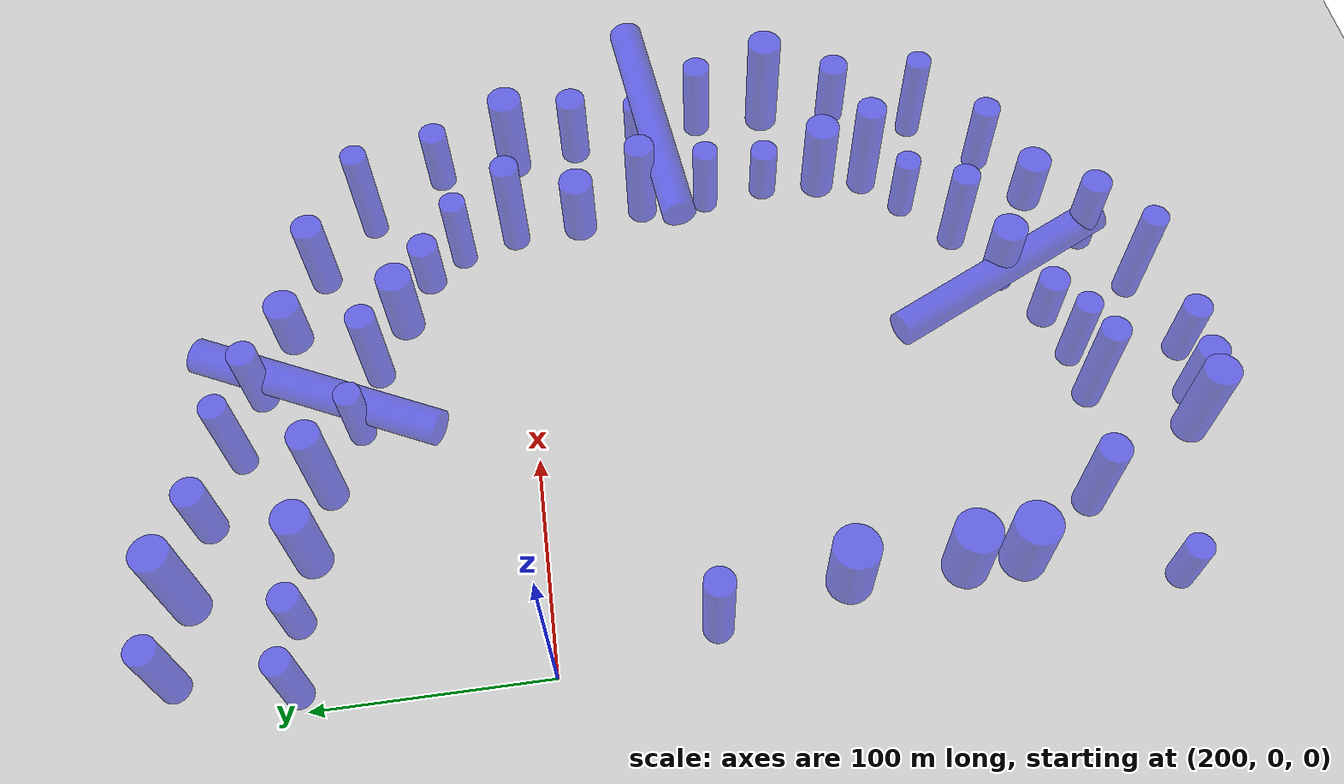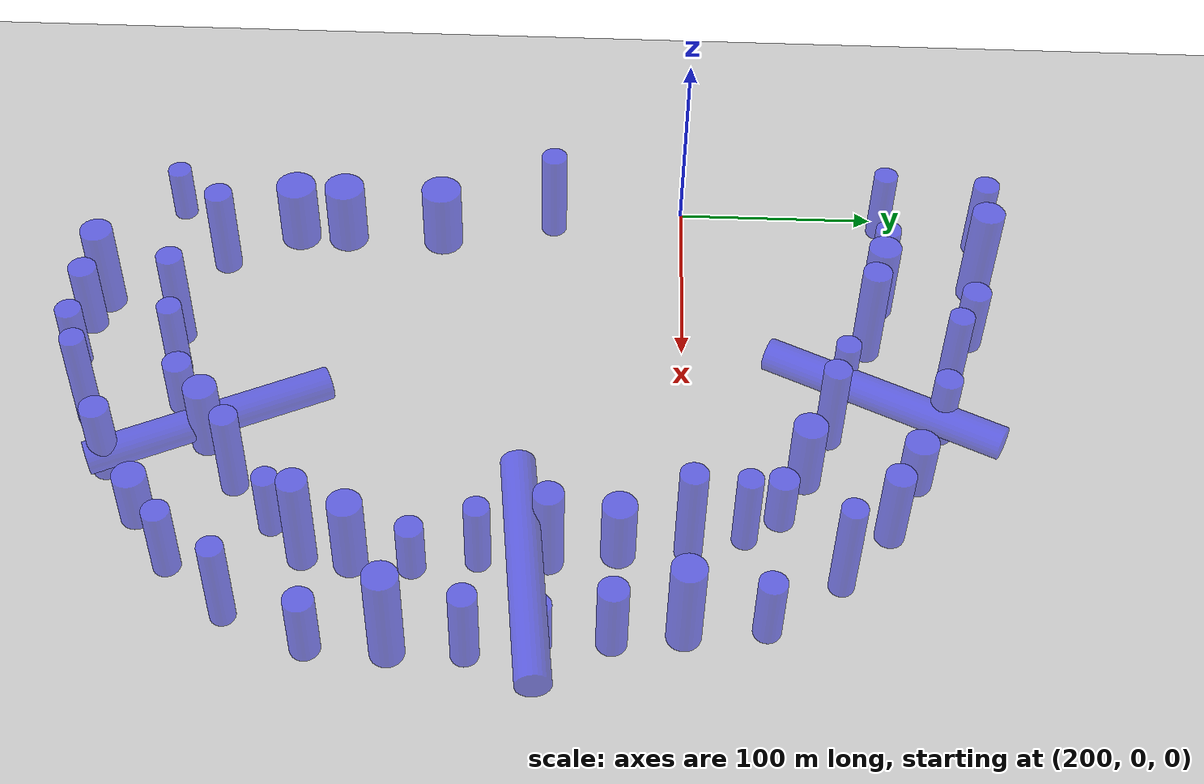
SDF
<sdf version="1.6">
 <world name="default">
  <model name="ground_plane">
   <static>1</static>
   <link name="link">
    <collision name="collision">
     <geometry><plane><normal>0 0 1</normal><size>1400.0 1400.0</size></plane></geometry>
     <surface><friction><ode><mu>100</mu><mu2>50</mu2></ode></friction></surface>
    </collision>
    <visual name="visual">
     <cast_shadows>0</cast_shadows>
     <geometry><plane><normal>0 0 1</normal><size>1400.0 1400.0</size></plane></geometry>
     <material>
      <script><uri>file://media/materials/scripts/gazebo.material</uri><name>Gazebo/Grey</name></script>
     </material>
    </visual>
   </link>
  </model>
  <model name="unit_cylinder_clone_3_clone">
   <static>true</static>
   <pose>225.023 -125.025 18.13715 0 0 0</pose>
   <link name="link">
    <inertial>
     <mass>1</mass>
     <inertia><ixx>0.145833</ixx><ixy>0</ixy><ixz>0</ixz><iyy>0.145833</iyy><iyz>0</iyz><izz>0.125</izz></inertia>
    </inertial>
    <collision name="collision">
     <geometry><cylinder><radius>10.1458</radius><length>36.2743</length></cylinder></geometry>
    </collision>
    <visual name="visual">
     <geometry><cylinder><radius>10.1458</radius><length>36.2743</length></cylinder></geometry>
     <material><ambient>0 0 1 1</ambient><diffuse>0 0 1 1</diffuse></material>
     <transparency>0.5</transparency>
    </visual>
   </link>
  </model>
  <model name="unit_cylinder_clone_3_clone_0_clone_0">
   <static>true</static>
   <pose>225.023 -200.025 18.13715 0 0 0</pose>
   <link name="link">
    <inertial>
     <mass>1</mass>
     <inertia><ixx>0.145833</ixx><ixy>0</ixy><ixz>0</ixz><iyy>0.145833</iyy><iyz>0</iyz><izz>0.125</izz></inertia>
    </inertial>
    <collision name="collision">
     <geometry><cylinder><radius>10.1458</radius><length>36.2743</length></cylinder></geometry>
    </collision>
    <visual name="visual">
     <geometry><cylinder><radius>10.1458</radius><length>36.2743</length></cylinder></geometry>
     <material><ambient>0 0 1 1</ambient><diffuse>0 0 1 1</diffuse></material>
     <transparency>0.5</transparency>
    </visual>
   </link>
  </model>
  <model name="unit_cylinder_clone_3_clone_0_clone_0_clone">
   <static>true</static>
   <pose>225.023 -175.025 18.13715 0 0 0</pose>
   <link name="link">
    <inertial>
     <mass>1</mass>
     <inertia><ixx>0.145833</ixx><ixy>0</ixy><ixz>0</ixz><iyy>0.145833</iyy><iyz>0</iyz><izz>0.125</izz></inertia>
    </inertial>
    <collision name="collision">
     <geometry><cylinder><radius>10.1458</radius><length>36.2743</length></cylinder></geometry>
    </collision>
    <visual name="visual">
     <geometry><cylinder><radius>10.1458</radius><length>36.2743</length></cylinder></geometry>
     <material><ambient>0 0 1 1</ambient><diffuse>0 0 1 1</diffuse></material>
     <transparency>0.5</transparency>
    </visual>
   </link>
  </model>
  <model name="static_obs21">
   <static>true</static>
   <pose>212.28 -67.25 25.0 0 0 0</pose>
   <link name="link">
    <gravity>false</gravity>
    <collision name="collision">
     <geometry><cylinder><radius>6.5</radius><length>50.0</length></cylinder></geometry>
    </collision>
    <visual name="visual">
     <geometry><cylinder><radius>6.5</radius><length>50.0</length></cylinder></geometry>
     <material><ambient>0 0 1 1</ambient><diffuse>0 0 1 1</diffuse></material>
     <transparency>0.5</transparency>
    </visual>
   </link>
  </model>
  <model name="static_obs26">
   <static>true</static>
   <pose>208.76 -263.97 15.0 0 0 0</pose>
   <link name="link">
    <gravity>false</gravity>
    <collision name="collision">
     <geometry><cylinder><radius>6.0</radius><length>30.0</length></cylinder></geometry>
    </collision>
    <visual name="visual">
     <geometry><cylinder><radius>6.0</radius><length>30.0</length></cylinder></geometry>
     <material><ambient>0 0 1 1</ambient><diffuse>0 0 1 1</diffuse></material>
     <transparency>0.5</transparency>
    </visual>
   </link>
  </model>
  <model name="static_obs27">
   <static>true</static>
   <pose>247.28 -235.31 25.0 0 0 0</pose>
   <link name="link">
    <gravity>false</gravity>
    <collision name="collision">
     <geometry><cylinder><radius>7.0</radius><length>50.0</length></cylinder></geometry>
    </collision>
    <visual name="visual">
     <geometry><cylinder><radius>7.0</radius><length>50.0</length></cylinder></geometry>
     <material><ambient>0 0 1 1</ambient><diffuse>0 0 1 1</diffuse></material>
     <transparency>0.5</transparency>
    </visual>
   </link>
  </model>
  <model name="static_obs28">
   <static>true</static>
   <pose>293.27 -296.57 20.0 0 0 0</pose>
   <link name="link">
    <gravity>false</gravity>
    <collision name="collision">
     <geometry><cylinder><radius>7.0</radius><length>40.0</length></cylinder></geometry>
    </collision>
    <visual name="visual">
     <geometry><cylinder><radius>7.0</radius><length>40.0</length></cylinder></geometry>
     <material><ambient>0 0 1 1</ambient><diffuse>0 0 1 1</diffuse></material>
     <transparency>0.5</transparency>
    </visual>
   </link>
  </model>
  <model name="static_obs29">
   <static>true</static>
   <pose>276.98 -291.29 25.0 0 0 0</pose>
   <link name="link">
    <gravity>false</gravity>
    <collision name="collision">
     <geometry><cylinder><radius>8.0</radius><length>50.0</length></cylinder></geometry>
    </collision>
    <visual name="visual">
     <geometry><cylinder><radius>8.0</radius><length>50.0</length></cylinder></geometry>
     <material><ambient>0 0 1 1</ambient><diffuse>0 0 1 1</diffuse></material>
     <transparency>0.5</transparency>
    </visual>
   </link>
  </model>
  <model name="static_obs30">
   <static>true</static>
   <pose>299.46 -250.24 28.0 0 0 0</pose>
   <link name="link">
    <gravity>false</gravity>
    <collision name="collision">
     <geometry><cylinder><radius>6.5</radius><length>56.0</length></cylinder></geometry>
    </collision>
    <visual name="visual">
     <geometry><cylinder><radius>6.5</radius><length>56.0</length></cylinder></geometry>
     <material><ambient>0 0 1 1</ambient><diffuse>0 0 1 1</diffuse></material>
     <transparency>0.5</transparency>
    </visual>
   </link>
  </model>
  <model name="static_obs31">
   <static>true</static>
   <pose>318.0 -299.13 18.0 0 0 0</pose>
   <link name="link">
    <gravity>false</gravity>
    <collision name="collision">
     <geometry><cylinder><radius>6.5</radius><length>36.0</length></cylinder></geometry>
    </collision>
    <visual name="visual">
     <geometry><cylinder><radius>6.5</radius><length>36.0</length></cylinder></geometry>
     <material><ambient>0 0 1 1</ambient><diffuse>0 0 1 1</diffuse></material>
     <transparency>0.5</transparency>
    </visual>
   </link>
  </model>
  <model name="static_obs32">
   <static>true</static>
   <pose>321.46 -248.19 22.0 0 0 0</pose>
   <link name="link">
    <gravity>false</gravity>
    <collision name="collision">
     <geometry><cylinder><radius>6.0</radius><length>44.0</length></cylinder></geometry>
    </collision>
    <visual name="visual">
     <geometry><cylinder><radius>6.0</radius><length>44.0</length></cylinder></geometry>
     <material><ambient>0 0 1 1</ambient><diffuse>0 0 1 1</diffuse></material>
     <transparency>0.5</transparency>
    </visual>
   </link>
  </model>
  <model name="static_obs33">
   <static>true</static>
   <pose>355.22 -285.95 28.0 0 0 0</pose>
   <link name="link">
    <gravity>false</gravity>
    <collision name="collision">
     <geometry><cylinder><radius>6.0</radius><length>56.0</length></cylinder></geometry>
    </collision>
    <visual name="visual">
     <geometry><cylinder><radius>6.0</radius><length>56.0</length></cylinder></geometry>
     <material><ambient>0 0 1 1</ambient><diffuse>0 0 1 1</diffuse></material>
     <transparency>0.5</transparency>
    </visual>
   </link>
  </model>
  <model name="static_obs34">
   <static>true</static>
   <pose>345.01 -242.19 15.0 0 0 0</pose>
   <link name="link">
    <gravity>false</gravity>
    <collision name="collision">
     <geometry><cylinder><radius>7.0</radius><length>30.0</length></cylinder></geometry>
    </collision>
    <visual name="visual">
     <geometry><cylinder><radius>7.0</radius><length>30.0</length></cylinder></geometry>
     <material><ambient>0 0 1 1</ambient><diffuse>0 0 1 1</diffuse></material>
     <transparency>0.5</transparency>
    </visual>
   </link>
  </model>
  <model name="static_obs35">
   <static>true</static>
   <pose>387.07 -271.34 22.0 0 0 0</pose>
   <link name="link">
    <gravity>false</gravity>
    <collision name="collision">
     <geometry><cylinder><radius>7.0</radius><length>44.0</length></cylinder></geometry>
    </collision>
    <visual name="visual">
     <geometry><cylinder><radius>7.0</radius><length>44.0</length></cylinder></geometry>
     <material><ambient>0 0 1 1</ambient><diffuse>0 0 1 1</diffuse></material>
     <transparency>0.5</transparency>
    </visual>
   </link>
  </model>
  <model name="static_obs36">
   <static>true</static>
   <pose>369.22 -225.98 20.0 0 0 0</pose>
   <link name="link">
    <gravity>false</gravity>
    <collision name="collision">
     <geometry><cylinder><radius>8.0</radius><length>40.0</length></cylinder></geometry>
    </collision>
    <visual name="visual">
     <geometry><cylinder><radius>8.0</radius><length>40.0</length></cylinder></geometry>
     <material><ambient>0 0 1 1</ambient><diffuse>0 0 1 1</diffuse></material>
     <transparency>0.5</transparency>
    </visual>
   </link>
  </model>
  <model name="static_obs37">
   <static>true</static>
   <pose>414.82 -252.03 15.0 0 0 0</pose>
   <link name="link">
    <gravity>false</gravity>
    <collision name="collision">
     <geometry><cylinder><radius>8.0</radius><length>30.0</length></cylinder></geometry>
    </collision>
    <visual name="visual">
     <geometry><cylinder><radius>8.0</radius><length>30.0</length></cylinder></geometry>
     <material><ambient>0 0 1 1</ambient><diffuse>0 0 1 1</diffuse></material>
     <transparency>0.5</transparency>
    </visual>
   </link>
  </model>
  <model name="static_obs38">
   <static>true</static>
   <pose>394.7 -209.81 25.0 0 0 0</pose>
   <link name="link">
    <gravity>false</gravity>
    <collision name="collision">
     <geometry><cylinder><radius>6.5</radius><length>50.0</length></cylinder></geometry>
    </collision>
    <visual name="visual">
     <geometry><cylinder><radius>6.5</radius><length>50.0</length></cylinder></geometry>
     <material><ambient>0 0 1 1</ambient><diffuse>0 0 1 1</diffuse></material>
     <transparency>0.5</transparency>
    </visual>
   </link>
  </model>
  <model name="static_obs39">
   <static>true</static>
   <pose>442.42 -233.61 20.0 0 0 0</pose>
   <link name="link">
    <gravity>false</gravity>
    <collision name="collision">
     <geometry><cylinder><radius>6.5</radius><length>40.0</length></cylinder></geometry>
    </collision>
    <visual name="visual">
     <geometry><cylinder><radius>6.5</radius><length>40.0</length></cylinder></geometry>
     <material><ambient>0 0 1 1</ambient><diffuse>0 0 1 1</diffuse></material>
     <transparency>0.5</transparency>
    </visual>
   </link>
  </model>
  <model name="static_obs40">
   <static>true</static>
   <pose>417.9 -189.31 18.0 0 0 0</pose>
   <link name="link">
    <gravity>false</gravity>
    <collision name="collision">
     <geometry><cylinder><radius>6.0</radius><length>36.0</length></cylinder></geometry>
    </collision>
    <visual name="visual">
     <geometry><cylinder><radius>6.0</radius><length>36.0</length></cylinder></geometry>
     <material><ambient>0 0 1 1</ambient><diffuse>0 0 1 1</diffuse></material>
     <transparency>0.5</transparency>
    </visual>
   </link>
  </model>
  <model name="static_obs41">
   <static>true</static>
   <pose>468.5 -204.1 25.0 0 0 0</pose>
   <link name="link">
    <gravity>false</gravity>
    <collision name="collision">
     <geometry><cylinder><radius>6.0</radius><length>50.0</length></cylinder></geometry>
    </collision>
    <visual name="visual">
     <geometry><cylinder><radius>6.0</radius><length>50.0</length></cylinder></geometry>
     <material><ambient>0 0 1 1</ambient><diffuse>0 0 1 1</diffuse></material>
     <transparency>0.5</transparency>
    </visual>
   </link>
  </model>
  <model name="static_obs42">
   <static>true</static>
   <pose>435.59 -172.95 28.0 0 0 0</pose>
   <link name="link">
    <gravity>false</gravity>
    <collision name="collision">
     <geometry><cylinder><radius>7.0</radius><length>56.0</length></cylinder></geometry>
    </collision>
    <visual name="visual">
     <geometry><cylinder><radius>7.0</radius><length>56.0</length></cylinder></geometry>
     <material><ambient>0 0 1 1</ambient><diffuse>0 0 1 1</diffuse></material>
     <transparency>0.5</transparency>
    </visual>
   </link>
  </model>
  <model name="static_obs43">
   <static>true</static>
   <pose>484.16 -165.52 18.0 0 0 0</pose>
   <link name="link">
    <gravity>false</gravity>
    <collision name="collision">
     <geometry><cylinder><radius>7.0</radius><length>36.0</length></cylinder></geometry>
    </collision>
    <visual name="visual">
     <geometry><cylinder><radius>7.0</radius><length>36.0</length></cylinder></geometry>
     <material><ambient>0 0 1 1</ambient><diffuse>0 0 1 1</diffuse></material>
     <transparency>0.5</transparency>
    </visual>
   </link>
  </model>
  <model name="static_obs44">
   <static>true</static>
   <pose>437.6 -150.53 22.0 0 0 0</pose>
   <link name="link">
    <gravity>false</gravity>
    <collision name="collision">
     <geometry><cylinder><radius>8.0</radius><length>44.0</length></cylinder></geometry>
    </collision>
    <visual name="visual">
     <geometry><cylinder><radius>8.0</radius><length>44.0</length></cylinder></geometry>
     <material><ambient>0 0 1 1</ambient><diffuse>0 0 1 1</diffuse></material>
     <transparency>0.5</transparency>
    </visual>
   </link>
  </model>
  <model name="static_obs45">
   <static>true</static>
   <pose>484.92 -129.44 28.0 0 0 0</pose>
   <link name="link">
    <gravity>false</gravity>
    <collision name="collision">
     <geometry><cylinder><radius>8.0</radius><length>56.0</length></cylinder></geometry>
    </collision>
    <visual name="visual">
     <geometry><cylinder><radius>8.0</radius><length>56.0</length></cylinder></geometry>
     <material><ambient>0 0 1 1</ambient><diffuse>0 0 1 1</diffuse></material>
     <transparency>0.5</transparency>
    </visual>
   </link>
  </model>
  <model name="static_obs46">
   <static>true</static>
   <pose>438.62 -122.71 15.0 0 0 0</pose>
   <link name="link">
    <gravity>false</gravity>
    <collision name="collision">
     <geometry><cylinder><radius>6.5</radius><length>30.0</length></cylinder></geometry>
    </collision>
    <visual name="visual">
     <geometry><cylinder><radius>6.5</radius><length>30.0</length></cylinder></geometry>
     <material><ambient>0 0 1 1</ambient><diffuse>0 0 1 1</diffuse></material>
     <transparency>0.5</transparency>
    </visual>
   </link>
  </model>
  <model name="static_obs47">
   <static>true</static>
   <pose>484.56 -95.44 22.0 0 0 0</pose>
   <link name="link">
    <gravity>false</gravity>
    <collision name="collision">
     <geometry><cylinder><radius>6.5</radius><length>44.0</length></cylinder></geometry>
    </collision>
    <visual name="visual">
     <geometry><cylinder><radius>6.5</radius><length>44.0</length></cylinder></geometry>
     <material><ambient>0 0 1 1</ambient><diffuse>0 0 1 1</diffuse></material>
     <transparency>0.5</transparency>
    </visual>
   </link>
  </model>
  <model name="static_obs48">
   <static>true</static>
   <pose>433.92 -92.92 20.0 0 0 0</pose>
   <link name="link">
    <gravity>false</gravity>
    <collision name="collision">
     <geometry><cylinder><radius>6.0</radius><length>40.0</length></cylinder></geometry>
    </collision>
    <visual name="visual">
     <geometry><cylinder><radius>6.0</radius><length>40.0</length></cylinder></geometry>
     <material><ambient>0 0 1 1</ambient><diffuse>0 0 1 1</diffuse></material>
     <transparency>0.5</transparency>
    </visual>
   </link>
  </model>
  <model name="static_obs49">
   <static>true</static>
   <pose>477.63 -63.67 15.0 0 0 0</pose>
   <link name="link">
    <gravity>false</gravity>
    <collision name="collision">
     <geometry><cylinder><radius>6.0</radius><length>30.0</length></cylinder></geometry>
    </collision>
    <visual name="visual">
     <geometry><cylinder><radius>6.0</radius><length>30.0</length></cylinder></geometry>
     <material><ambient>0 0 1 1</ambient><diffuse>0 0 1 1</diffuse></material>
     <transparency>0.5</transparency>
    </visual>
   </link>
  </model>
  <model name="static_obs50">
   <static>true</static>
   <pose>432.98 -61.18 25.0 0 0 0</pose>
   <link name="link">
    <gravity>false</gravity>
    <collision name="collision">
     <geometry><cylinder><radius>7.0</radius><length>50.0</length></cylinder></geometry>
    </collision>
    <visual name="visual">
     <geometry><cylinder><radius>7.0</radius><length>50.0</length></cylinder></geometry>
     <material><ambient>0 0 1 1</ambient><diffuse>0 0 1 1</diffuse></material>
     <transparency>0.5</transparency>
    </visual>
   </link>
  </model>
  <model name="static_obs51">
   <static>true</static>
   <pose>475.65 -31.66 20.0 0 0 0</pose>
   <link name="link">
    <gravity>false</gravity>
    <collision name="collision">
     <geometry><cylinder><radius>7.0</radius><length>40.0</length></cylinder></geometry>
    </collision>
    <visual name="visual">
     <geometry><cylinder><radius>7.0</radius><length>40.0</length></cylinder></geometry>
     <material><ambient>0 0 1 1</ambient><diffuse>0 0 1 1</diffuse></material>
     <transparency>0.5</transparency>
    </visual>
   </link>
  </model>
  <model name="static_obs52">
   <static>true</static>
   <pose>427.03 -29.68 18.0 0 0 0</pose>
   <link name="link">
    <gravity>false</gravity>
    <collision name="collision">
     <geometry><cylinder><radius>8.0</radius><length>36.0</length></cylinder></geometry>
    </collision>
    <visual name="visual">
     <geometry><cylinder><radius>8.0</radius><length>36.0</length></cylinder></geometry>
     <material><ambient>0 0 1 1</ambient><diffuse>0 0 1 1</diffuse></material>
     <transparency>0.5</transparency>
    </visual>
   </link>
  </model>
  <model name="static_obs53">
   <static>true</static>
   <pose>470.69 -0.03 25.0 0 0 0</pose>
   <link name="link">
    <gravity>false</gravity>
    <collision name="collision">
     <geometry><cylinder><radius>8.0</radius><length>50.0</length></cylinder></geometry>
    </collision>
    <visual name="visual">
     <geometry><cylinder><radius>8.0</radius><length>50.0</length></cylinder></geometry>
     <material><ambient>0 0 1 1</ambient><diffuse>0 0 1 1</diffuse></material>
     <transparency>0.5</transparency>
    </visual>
   </link>
  </model>
  <model name="static_obs54">
   <static>true</static>
   <pose>424.05 2.2 28.0 0 0 0</pose>
   <link name="link">
    <gravity>false</gravity>
    <collision name="collision">
     <geometry><cylinder><radius>6.5</radius><length>56.0</length></cylinder></geometry>
    </collision>
    <visual name="visual">
     <geometry><cylinder><radius>6.5</radius><length>56.0</length></cylinder></geometry>
     <material><ambient>0 0 1 1</ambient><diffuse>0 0 1 1</diffuse></material>
     <transparency>0.5</transparency>
    </visual>
   </link>
  </model>
  <model name="static_obs55">
   <static>true</static>
   <pose>466.36 36.68 18.0 0 0 0</pose>
   <link name="link">
    <gravity>false</gravity>
    <collision name="collision">
     <geometry><cylinder><radius>6.5</radius><length>36.0</length></cylinder></geometry>
    </collision>
    <visual name="visual">
     <geometry><cylinder><radius>6.5</radius><length>36.0</length></cylinder></geometry>
     <material><ambient>0 0 1 1</ambient><diffuse>0 0 1 1</diffuse></material>
     <transparency>0.5</transparency>
    </visual>
   </link>
  </model>
  <model name="static_obs56">
   <static>true</static>
   <pose>415.91 27.95 22.0 0 0 0</pose>
   <link name="link">
    <gravity>false</gravity>
    <collision name="collision">
     <geometry><cylinder><radius>6.0</radius><length>44.0</length></cylinder></geometry>
    </collision>
    <visual name="visual">
     <geometry><cylinder><radius>6.0</radius><length>44.0</length></cylinder></geometry>
     <material><ambient>0 0 1 1</ambient><diffuse>0 0 1 1</diffuse></material>
     <transparency>0.5</transparency>
    </visual>
   </link>
  </model>
  <model name="static_obs57">
   <static>true</static>
   <pose>440.3 70.84 28.0 0 0 0</pose>
   <link name="link">
    <gravity>false</gravity>
    <collision name="collision">
     <geometry><cylinder><radius>6.0</radius><length>56.0</length></cylinder></geometry>
    </collision>
    <visual name="visual">
     <geometry><cylinder><radius>6.0</radius><length>56.0</length></cylinder></geometry>
     <material><ambient>0 0 1 1</ambient><diffuse>0 0 1 1</diffuse></material>
     <transparency>0.5</transparency>
    </visual>
   </link>
  </model>
  <model name="static_obs58">
   <static>true</static>
   <pose>403.84 44.39 15.0 0 0 0</pose>
   <link name="link">
    <gravity>false</gravity>
    <collision name="collision">
     <geometry><cylinder><radius>7.0</radius><length>30.0</length></cylinder></geometry>
    </collision>
    <visual name="visual">
     <geometry><cylinder><radius>7.0</radius><length>30.0</length></cylinder></geometry>
     <material><ambient>0 0 1 1</ambient><diffuse>0 0 1 1</diffuse></material>
     <transparency>0.5</transparency>
    </visual>
   </link>
  </model>
  <model name="static_obs59">
   <static>true</static>
   <pose>410.97 94.51 22.0 0 0 0</pose>
   <link name="link">
    <gravity>false</gravity>
    <collision name="collision">
     <geometry><cylinder><radius>7.0</radius><length>44.0</length></cylinder></geometry>
    </collision>
    <visual name="visual">
     <geometry><cylinder><radius>7.0</radius><length>44.0</length></cylinder></geometry>
     <material><ambient>0 0 1 1</ambient><diffuse>0 0 1 1</diffuse></material>
     <transparency>0.5</transparency>
    </visual>
   </link>
  </model>
  <model name="static_obs60">
   <static>true</static>
   <pose>380.31 56.51 20.0 0 0 0</pose>
   <link name="link">
    <gravity>false</gravity>
    <collision name="collision">
     <geometry><cylinder><radius>8.0</radius><length>40.0</length></cylinder></geometry>
    </collision>
    <visual name="visual">
     <geometry><cylinder><radius>8.0</radius><length>40.0</length></cylinder></geometry>
     <material><ambient>0 0 1 1</ambient><diffuse>0 0 1 1</diffuse></material>
     <transparency>0.5</transparency>
    </visual>
   </link>
  </model>
  <model name="static_obs61">
   <static>true</static>
   <pose>379.25 108.63 15.0 0 0 0</pose>
   <link name="link">
    <gravity>false</gravity>
    <collision name="collision">
     <geometry><cylinder><radius>8.0</radius><length>30.0</length></cylinder></geometry>
    </collision>
    <visual name="visual">
     <geometry><cylinder><radius>8.0</radius><length>30.0</length></cylinder></geometry>
     <material><ambient>0 0 1 1</ambient><diffuse>0 0 1 1</diffuse></material>
     <transparency>0.5</transparency>
    </visual>
   </link>
  </model>
  <model name="static_obs62">
   <static>true</static>
   <pose>353.98 69.28 25.0 0 0 0</pose>
   <link name="link">
    <gravity>false</gravity>
    <collision name="collision">
     <geometry><cylinder><radius>6.5</radius><length>50.0</length></cylinder></geometry>
    </collision>
    <visual name="visual">
     <geometry><cylinder><radius>6.5</radius><length>50.0</length></cylinder></geometry>
     <material><ambient>0 0 1 1</ambient><diffuse>0 0 1 1</diffuse></material>
     <transparency>0.5</transparency>
    </visual>
   </link>
  </model>
  <model name="static_obs63">
   <static>true</static>
   <pose>348.59 122.33 20.0 0 0 0</pose>
   <link name="link">
    <gravity>false</gravity>
    <collision name="collision">
     <geometry><cylinder><radius>6.5</radius><length>40.0</length></cylinder></geometry>
    </collision>
    <visual name="visual">
     <geometry><cylinder><radius>6.5</radius><length>40.0</length></cylinder></geometry>
     <material><ambient>0 0 1 1</ambient><diffuse>0 0 1 1</diffuse></material>
     <transparency>0.5</transparency>
    </visual>
   </link>
  </model>
  <model name="static_obs64">
   <static>true</static>
   <pose>324.61 77.73 18.0 0 0 0</pose>
   <link name="link">
    <gravity>false</gravity>
    <collision name="collision">
     <geometry><cylinder><radius>6.0</radius><length>36.0</length></cylinder></geometry>
    </collision>
    <visual name="visual">
     <geometry><cylinder><radius>6.0</radius><length>36.0</length></cylinder></geometry>
     <material><ambient>0 0 1 1</ambient><diffuse>0 0 1 1</diffuse></material>
     <transparency>0.5</transparency>
    </visual>
   </link>
  </model>
  <model name="static_obs65">
   <static>true</static>
   <pose>317.36 129.99 25.0 0 0 0</pose>
   <link name="link">
    <gravity>false</gravity>
    <collision name="collision">
     <geometry><cylinder><radius>6.0</radius><length>50.0</length></cylinder></geometry>
    </collision>
    <visual name="visual">
     <geometry><cylinder><radius>6.0</radius><length>50.0</length></cylinder></geometry>
     <material><ambient>0 0 1 1</ambient><diffuse>0 0 1 1</diffuse></material>
     <transparency>0.5</transparency>
    </visual>
   </link>
  </model>
  <model name="static_obs66">
   <static>true</static>
   <pose>295.38 91.04 28.0 0 0 0</pose>
   <link name="link">
    <gravity>false</gravity>
    <collision name="collision">
     <geometry><cylinder><radius>7.0</radius><length>56.0</length></cylinder></geometry>
    </collision>
    <visual name="visual">
     <geometry><cylinder><radius>7.0</radius><length>56.0</length></cylinder></geometry>
     <material><ambient>0 0 1 1</ambient><diffuse>0 0 1 1</diffuse></material>
     <transparency>0.5</transparency>
    </visual>
   </link>
  </model>
  <model name="static_obs67">
   <static>true</static>
   <pose>286.52 142.45 18.0 0 0 0</pose>
   <link name="link">
    <gravity>false</gravity>
    <collision name="collision">
     <geometry><cylinder><radius>7.0</radius><length>36.0</length></cylinder></geometry>
    </collision>
    <visual name="visual">
     <geometry><cylinder><radius>7.0</radius><length>36.0</length></cylinder></geometry>
     <material><ambient>0 0 1 1</ambient><diffuse>0 0 1 1</diffuse></material>
     <transparency>0.5</transparency>
    </visual>
   </link>
  </model>
  <model name="static_obs68">
   <static>true</static>
   <pose>265.4 98.44 22.0 0 0 0</pose>
   <link name="link">
    <gravity>false</gravity>
    <collision name="collision">
     <geometry><cylinder><radius>8.0</radius><length>44.0</length></cylinder></geometry>
    </collision>
    <visual name="visual">
     <geometry><cylinder><radius>8.0</radius><length>44.0</length></cylinder></geometry>
     <material><ambient>0 0 1 1</ambient><diffuse>0 0 1 1</diffuse></material>
     <transparency>0.5</transparency>
    </visual>
   </link>
  </model>
  <model name="static_obs69">
   <static>true</static>
   <pose>251.36 148.69 28.0 0 0 0</pose>
   <link name="link">
    <gravity>false</gravity>
    <collision name="collision">
     <geometry><cylinder><radius>8.0</radius><length>56.0</length></cylinder></geometry>
    </collision>
    <visual name="visual">
     <geometry><cylinder><radius>8.0</radius><length>56.0</length></cylinder></geometry>
     <material><ambient>0 0 1 1</ambient><diffuse>0 0 1 1</diffuse></material>
     <transparency>0.5</transparency>
    </visual>
   </link>
  </model>
  <model name="static_obs70">
   <static>true</static>
   <pose>237.72 103.9 15.0 0 0 0</pose>
   <link name="link">
    <gravity>false</gravity>
    <collision name="collision">
     <geometry><cylinder><radius>6.5</radius><length>30.0</length></cylinder></geometry>
    </collision>
    <visual name="visual">
     <geometry><cylinder><radius>6.5</radius><length>30.0</length></cylinder></geometry>
     <material><ambient>0 0 1 1</ambient><diffuse>0 0 1 1</diffuse></material>
     <transparency>0.5</transparency>
    </visual>
   </link>
  </model>
  <model name="static_obs71">
   <static>true</static>
   <pose>217.5 153.25 22.0 0 0 0</pose>
   <link name="link">
    <gravity>false</gravity>
    <collision name="collision">
     <geometry><cylinder><radius>6.5</radius><length>44.0</length></cylinder></geometry>
    </collision>
    <visual name="visual">
     <geometry><cylinder><radius>6.5</radius><length>44.0</length></cylinder></geometry>
     <material><ambient>0 0 1 1</ambient><diffuse>0 0 1 1</diffuse></material>
     <transparency>0.5</transparency>
    </visual>
   </link>
  </model>
  <model name="static_obs72">
   <static>true</static>
   <pose>207.74 103.49 20.0 0 0 0</pose>
   <link name="link">
    <gravity>false</gravity>
    <collision name="collision">
     <geometry><cylinder><radius>6.0</radius><length>40.0</length></cylinder></geometry>
    </collision>
    <visual name="visual">
     <geometry><cylinder><radius>6.0</radius><length>40.0</length></cylinder></geometry>
     <material><ambient>0 0 1 1</ambient><diffuse>0 0 1 1</diffuse></material>
     <transparency>0.5</transparency>
    </visual>
   </link>
  </model>
  <model name="horizontal_obs4">
   <static>true</static>
   <pose>365.0 -225.0 12.0 0 1.5707963267948966 2.0245819323134224</pose>
   <link name="link">
    <gravity>false</gravity>
    <collision name="collision">
     <geometry><cylinder><radius>8.0</radius><length>120.0</length></cylinder></geometry>
    </collision>
    <visual name="visual">
     <geometry><cylinder><radius>8.0</radius><length>120.0</length></cylinder></geometry>
     <material><ambient>0 0 1 1</ambient><diffuse>0 0 1 1</diffuse></material>
     <transparency>0.5</transparency>
    </visual>
   </link>
  </model>
  <model name="horizontal_obs5">
   <static>true</static>
   <pose>462.0 -70.0 34.0 0 1.5707963267948966 0.10471975511965978</pose>
   <link name="link">
    <gravity>false</gravity>
    <collision name="collision">
     <geometry><cylinder><radius>8.0</radius><length>120.0</length></cylinder></geometry>
    </collision>
    <visual name="visual">
     <geometry><cylinder><radius>8.0</radius><length>120.0</length></cylinder></geometry>
     <material><ambient>0 0 1 1</ambient><diffuse>0 0 1 1</diffuse></material>
     <transparency>0.5</transparency>
    </visual>
   </link>
  </model>
  <model name="horizontal_obs6">
   <static>true</static>
   <pose>340.0 95.0 16.0 0 1.5707963267948966 1.117010721276371</pose>
   <link name="link">
    <gravity>false</gravity>
    <collision name="collision">
     <geometry><cylinder><radius>8.0</radius><length>120.0</length></cylinder></geometry>
    </collision>
    <visual name="visual">
     <geometry><cylinder><radius>8.0</radius><length>120.0</length></cylinder></geometry>
     <material><ambient>0 0 1 1</ambient><diffuse>0 0 1 1</diffuse></material>
     <transparency>0.5</transparency>
    </visual>
   </link>
  </model>
 </world>
</sdf>
